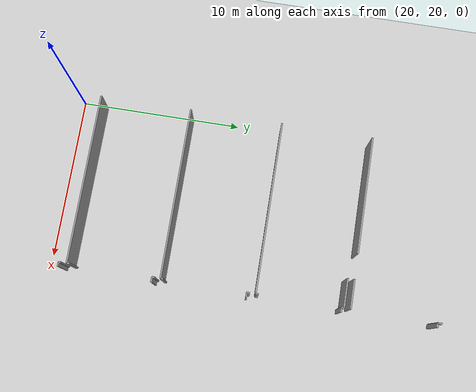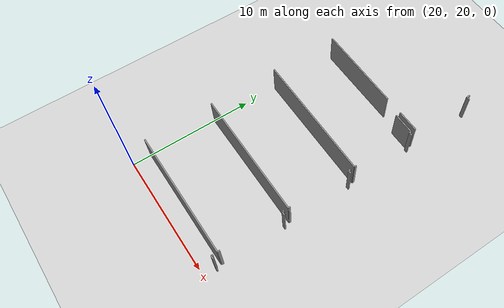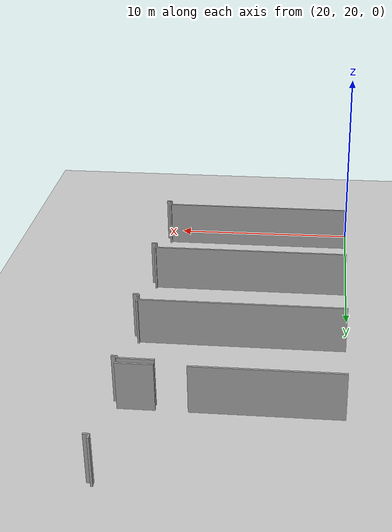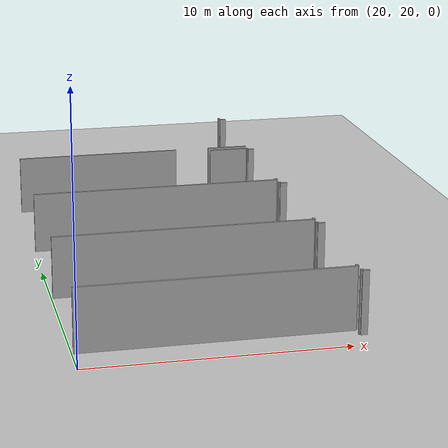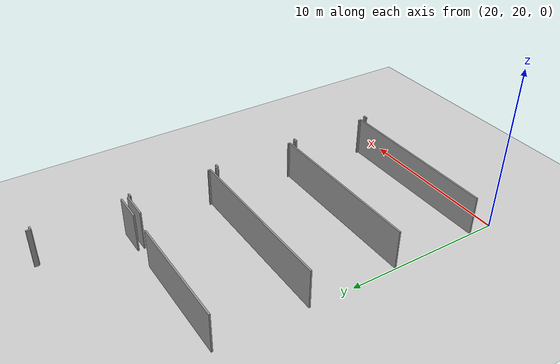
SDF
<sdf version="1.6">
 <world name="default">
  <model name="ground_plane">
   <static>1</static>
   <link name="link">
    <collision name="collision">
     <geometry><plane><normal>0 0 1</normal><size>100 100</size></plane></geometry>
     <surface><friction><ode><mu>100</mu><mu2>50</mu2></ode></friction></surface>
    </collision>
    <visual name="visual">
     <cast_shadows>0</cast_shadows>
     <geometry><plane><normal>0 0 1</normal><size>100 100</size></plane></geometry>
     <material>
      <script><uri>file://media/materials/scripts/gazebo.material</uri><name>Gazebo/Grey</name></script>
     </material>
    </visual>
   </link>
  </model>
  <model name="50015847">
   <static>1</static>
   <link name="Wall_472">
    <collision name="Wall_472_Collision">
     <geometry><box><size>0.270249656785 0.1 2.5</size></box></geometry>
     <pose>0.135124828393 0 1.25 0 0 0</pose>
    </collision>
    <visual name="Wall_472_Visual">
     <pose>0.135124828393 0 1.25 0 0 0</pose>
     <geometry><box><size>0.270249656785 0.1 2.5</size></box></geometry>
     <material>
      <script><uri>file://media/materials/scripts/gazebo.material</uri><name>Gazebo/Grey</name></script>
      <ambient>1 1 1 1</ambient>
     </material>
    </visual>
    <pose>162.877408857 -0.244826358875 0 0 0 -1.57079632679</pose>
   </link>
   <link name="Wall_473">
    <collision name="Wall_473_Collision">
     <geometry><box><size>0.270249656785 0.1 2.5</size></box></geometry>
     <pose>0.135124828393 0 1.25 0 0 0</pose>
    </collision>
    <visual name="Wall_473_Visual">
     <pose>0.135124828393 0 1.25 0 0 0</pose>
     <geometry><box><size>0.270249656785 0.1 2.5</size></box></geometry>
     <material>
      <script><uri>file://media/materials/scripts/gazebo.material</uri><name>Gazebo/Grey</name></script>
      <ambient>1 1 1 1</ambient>
     </material>
    </visual>
    <pose>162.877408857 -0.515076015661 0 0 0 0.0</pose>
   </link>
   <link name="Wall_477">
    <collision name="Wall_477_Collision">
     <geometry><box><size>1.78496974628 0.1 2.5</size></box></geometry>
     <pose>0.892484873138 0 1.25 0 0 0</pose>
    </collision>
    <visual name="Wall_477_Visual">
     <pose>0.892484873138 0 1.25 0 0 0</pose>
     <geometry><box><size>1.78496974628 0.1 2.5</size></box></geometry>
     <material>
      <script><uri>file://media/materials/scripts/gazebo.material</uri><name>Gazebo/Grey</name></script>
      <ambient>1 1 1 1</ambient>
     </material>
    </visual>
    <pose>162.899018661 -5.59388823918 0 0 0 3.14159265359</pose>
   </link>
   <link name="Wall_478">
    <collision name="Wall_478_Collision">
     <geometry><box><size>7.17293107456 0.1 2.5</size></box></geometry>
     <pose>3.58646553728 0 1.25 0 0 0</pose>
    </collision>
    <visual name="Wall_478_Visual">
     <pose>3.58646553728 0 1.25 0 0 0</pose>
     <geometry><box><size>7.17293107456 0.1 2.5</size></box></geometry>
     <material>
      <script><uri>file://media/materials/scripts/gazebo.material</uri><name>Gazebo/Grey</name></script>
      <ambient>1 1 1 1</ambient>
     </material>
    </visual>
    <pose>159.605938882 -5.59388823918 0 0 0 -3.14088378577</pose>
   </link>
   <link name="Wall_480">
    <collision name="Wall_480_Collision">
     <geometry><box><size>1.7432755377 0.1 2.5</size></box></geometry>
     <pose>0.871637768851 0 1.25 0 0 0</pose>
    </collision>
    <visual name="Wall_480_Visual">
     <pose>0.871637768851 0 1.25 0 0 0</pose>
     <geometry><box><size>1.7432755377 0.1 2.5</size></box></geometry>
     <material>
      <script><uri>file://media/materials/scripts/gazebo.material</uri><name>Gazebo/Grey</name></script>
      <ambient>1 1 1 1</ambient>
     </material>
    </visual>
    <pose>161.131845223 -5.9793054355 0 0 0 0.0</pose>
   </link>
   <link name="Wall_481">
    <collision name="Wall_481_Collision">
     <geometry><box><size>0.151268622566 0.1 2.5</size></box></geometry>
     <pose>0.0756343112829 0 1.25 0 0 0</pose>
    </collision>
    <visual name="Wall_481_Visual">
     <pose>0.0756343112829 0 1.25 0 0 0</pose>
     <geometry><box><size>0.151268622566 0.1 2.5</size></box></geometry>
     <material>
      <script><uri>file://media/materials/scripts/gazebo.material</uri><name>Gazebo/Grey</name></script>
      <ambient>1 1 1 1</ambient>
     </material>
    </visual>
    <pose>162.875120761 -5.9793054355 0 0 0 -1.57079632679</pose>
   </link>
   <link name="Wall_482">
    <collision name="Wall_482_Collision">
     <geometry><box><size>0.267707326994 0.1 2.5</size></box></geometry>
     <pose>0.133853663497 0 1.25 0 0 0</pose>
    </collision>
    <visual name="Wall_482_Visual">
     <pose>0.133853663497 0 1.25 0 0 0</pose>
     <geometry><box><size>0.267707326994 0.1 2.5</size></box></geometry>
     <material>
      <script><uri>file://media/materials/scripts/gazebo.material</uri><name>Gazebo/Grey</name></script>
      <ambient>1 1 1 1</ambient>
     </material>
    </visual>
    <pose>162.875120761 -6.13057405807 0 0 0 0.0</pose>
   </link>
   <link name="Wall_485">
    <collision name="Wall_485_Collision">
     <geometry><box><size>0.169319164082 0.1 2.5</size></box></geometry>
     <pose>0.084659582041 0 1.25 0 0 0</pose>
    </collision>
    <visual name="Wall_485_Visual">
     <pose>0.084659582041 0 1.25 0 0 0</pose>
     <geometry><box><size>0.169319164082 0.1 2.5</size></box></geometry>
     <material>
      <script><uri>file://media/materials/scripts/gazebo.material</uri><name>Gazebo/Grey</name></script>
      <ambient>1 1 1 1</ambient>
     </material>
    </visual>
    <pose>162.875120761 -11.010321859 0 0 0 -1.57079632679</pose>
   </link>
   <link name="Wall_486">
    <collision name="Wall_486_Collision">
     <geometry><box><size>10.474398739 0.1 2.5</size></box></geometry>
     <pose>5.2371993695 0 1.25 0 0 0</pose>
    </collision>
    <visual name="Wall_486_Visual">
     <pose>5.2371993695 0 1.25 0 0 0</pose>
     <geometry><box><size>10.474398739 0.1 2.5</size></box></geometry>
     <material>
      <script><uri>file://media/materials/scripts/gazebo.material</uri><name>Gazebo/Grey</name></script>
      <ambient>1 1 1 1</ambient>
     </material>
    </visual>
    <pose>162.875120761 -11.179641023 0 0 0 3.14159265359</pose>
   </link>
   <link name="Wall_493">
    <collision name="Wall_493_Collision">
     <geometry><box><size>0.181776580058 0.1 2.5</size></box></geometry>
     <pose>0.090888290029 0 1.25 0 0 0</pose>
    </collision>
    <visual name="Wall_493_Visual">
     <pose>0.090888290029 0 1.25 0 0 0</pose>
     <geometry><box><size>0.181776580058 0.1 2.5</size></box></geometry>
     <material>
      <script><uri>file://media/materials/scripts/gazebo.material</uri><name>Gazebo/Grey</name></script>
      <ambient>1 1 1 1</ambient>
     </material>
    </visual>
    <pose>162.892662836 -11.5226013118 0 0 0 -1.57079632679</pose>
   </link>
   <link name="Wall_494">
    <collision name="Wall_494_Collision">
     <geometry><box><size>0.286774800427 0.1 2.5</size></box></geometry>
     <pose>0.143387400214 0 1.25 0 0 0</pose>
    </collision>
    <visual name="Wall_494_Visual">
     <pose>0.143387400214 0 1.25 0 0 0</pose>
     <geometry><box><size>0.286774800427 0.1 2.5</size></box></geometry>
     <material>
      <script><uri>file://media/materials/scripts/gazebo.material</uri><name>Gazebo/Grey</name></script>
      <ambient>1 1 1 1</ambient>
     </material>
    </visual>
    <pose>162.892662836 -11.7043778919 0 0 0 0.0</pose>
   </link>
   <link name="Wall_497">
    <collision name="Wall_497_Collision">
     <geometry><box><size>0.158132913001 0.1 2.5</size></box></geometry>
     <pose>0.0790664565007 0 1.25 0 0 0</pose>
    </collision>
    <visual name="Wall_497_Visual">
     <pose>0.0790664565007 0 1.25 0 0 0</pose>
     <geometry><box><size>0.158132913001 0.1 2.5</size></box></geometry>
     <material>
      <script><uri>file://media/materials/scripts/gazebo.material</uri><name>Gazebo/Grey</name></script>
      <ambient>1 1 1 1</ambient>
     </material>
    </visual>
    <pose>162.889866273 -16.6695479738 0 0 0 -1.57079632679</pose>
   </link>
   <link name="Wall_498">
    <collision name="Wall_498_Collision">
     <geometry><box><size>10.4817754912 0.1 2.5</size></box></geometry>
     <pose>5.2408877456 0 1.25 0 0 0</pose>
    </collision>
    <visual name="Wall_498_Visual">
     <pose>5.2408877456 0 1.25 0 0 0</pose>
     <geometry><box><size>10.4817754912 0.1 2.5</size></box></geometry>
     <material>
      <script><uri>file://media/materials/scripts/gazebo.material</uri><name>Gazebo/Grey</name></script>
      <ambient>1 1 1 1</ambient>
     </material>
    </visual>
    <pose>162.889866273 -16.8276808868 0 0 0 -3.14071948202</pose>
   </link>
   <link name="Wall_500">
    <collision name="Wall_500_Collision">
     <geometry><box><size>0.15584481619 0.1 2.5</size></box></geometry>
     <pose>0.0779224080948 0 1.25 0 0 0</pose>
    </collision>
    <visual name="Wall_500_Visual">
     <pose>0.0779224080948 0 1.25 0 0 0</pose>
     <geometry><box><size>0.15584481619 0.1 2.5</size></box></geometry>
     <material>
      <script><uri>file://media/materials/scripts/gazebo.material</uri><name>Gazebo/Grey</name></script>
      <ambient>1 1 1 1</ambient>
     </material>
    </visual>
    <pose>162.883256216 -17.1683530788 0 0 0 -1.57079632679</pose>
   </link>
   <link name="Wall_501">
    <collision name="Wall_501_Collision">
     <geometry><box><size>0.296181420654 0.1 2.5</size></box></geometry>
     <pose>0.148090710327 0 1.25 0 0 0</pose>
    </collision>
    <visual name="Wall_501_Visual">
     <pose>0.148090710327 0 1.25 0 0 0</pose>
     <geometry><box><size>0.296181420654 0.1 2.5</size></box></geometry>
     <material>
      <script><uri>file://media/materials/scripts/gazebo.material</uri><name>Gazebo/Grey</name></script>
      <ambient>1 1 1 1</ambient>
     </material>
    </visual>
    <pose>162.883256216 -17.324197895 0 0 0 0.0</pose>
   </link>
   <link name="Wall_503">
    <collision name="Wall_503_Collision">
     <geometry><box><size>0.190928967306 0.1 2.5</size></box></geometry>
     <pose>0.0954644836528 0 1.25 0 0 0</pose>
    </collision>
    <visual name="Wall_503_Visual">
     <pose>0.0954644836528 0 1.25 0 0 0</pose>
     <geometry><box><size>0.190928967306 0.1 2.5</size></box></geometry>
     <material>
      <script><uri>file://media/materials/scripts/gazebo.material</uri><name>Gazebo/Grey</name></script>
      <ambient>1 1 1 1</ambient>
     </material>
    </visual>
    <pose>162.873086897 -22.2464026033 0 0 0 -1.57079632679</pose>
   </link>
   <link name="Wall_504">
    <collision name="Wall_504_Collision">
     <geometry><box><size>10.4527889358 0.1 2.5</size></box></geometry>
     <pose>5.22639446789 0 1.25 0 0 0</pose>
    </collision>
    <visual name="Wall_504_Visual">
     <pose>5.22639446789 0 1.25 0 0 0</pose>
     <geometry><box><size>10.4527889358 0.1 2.5</size></box></geometry>
     <material>
      <script><uri>file://media/materials/scripts/gazebo.material</uri><name>Gazebo/Grey</name></script>
      <ambient>1 1 1 1</ambient>
     </material>
    </visual>
    <pose>162.873086897 -22.4373315707 0 0 0 3.14159265359</pose>
   </link>
   <link name="Wall_509">
    <collision name="Wall_509_Collision">
     <geometry><box><size>0.124319926781 0.1 2.5</size></box></geometry>
     <pose>0.0621599633904 0 1.25 0 0 0</pose>
    </collision>
    <visual name="Wall_509_Visual">
     <pose>0.0621599633904 0 1.25 0 0 0</pose>
     <geometry><box><size>0.124319926781 0.1 2.5</size></box></geometry>
     <material>
      <script><uri>file://media/materials/scripts/gazebo.material</uri><name>Gazebo/Grey</name></script>
      <ambient>1 1 1 1</ambient>
     </material>
    </visual>
    <pose>162.890120506 -22.7815630244 0 0 0 -1.57079632679</pose>
   </link>
   <link name="Wall_510">
    <collision name="Wall_510_Collision">
     <geometry><box><size>0.263893832308 0.1 2.5</size></box></geometry>
     <pose>0.131946916154 0 1.25 0 0 0</pose>
    </collision>
    <visual name="Wall_510_Visual">
     <pose>0.131946916154 0 1.25 0 0 0</pose>
     <geometry><box><size>0.263893832308 0.1 2.5</size></box></geometry>
     <material>
      <script><uri>file://media/materials/scripts/gazebo.material</uri><name>Gazebo/Grey</name></script>
      <ambient>1 1 1 1</ambient>
     </material>
    </visual>
    <pose>162.890120506 -22.9058829511 0 0 0 0.0</pose>
   </link>
   <pose>-132.35 43.9162226064 0 0 0 0</pose>
  </model>
 </world>
</sdf>
